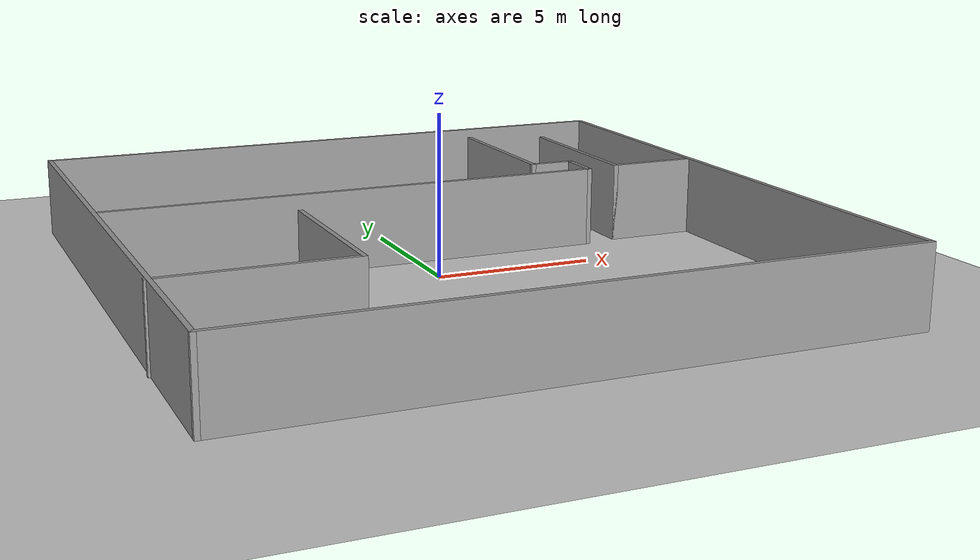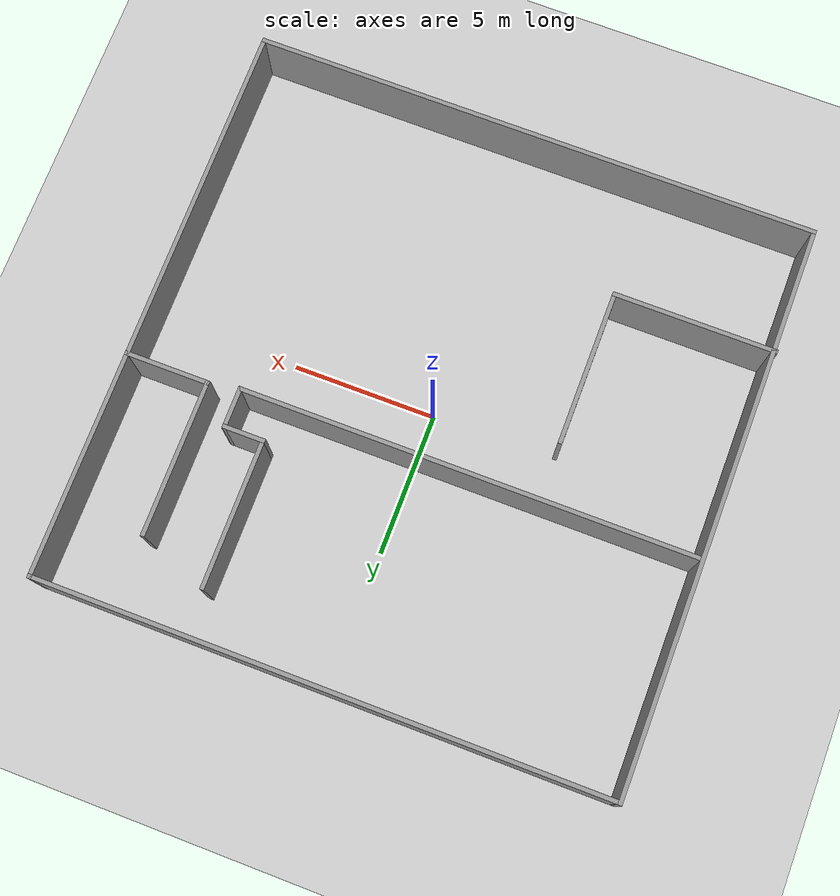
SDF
<?xml version="1.0"?>
<sdf version="1.6">

  <world name="old_maze">

    <gravity>0 0 -9.81</gravity>
    <physics name="default_physics" default="0" type="ode">
      <max_step_size>0.005</max_step_size>
      <real_time_factor>1</real_time_factor>
      <real_time_update_rate>0</real_time_update_rate>
    </physics>

    <scene>
      <ambient>0.4 0.4 0.4 1</ambient>
      <background>0.7 0.7 0.7 1</background>
      <shadows>1</shadows>
    </scene>

    <gui>
      <camera name='gzclient_camera'>
        <pose>1.5 -15.5 20 0 0.9 1.6</pose>
      </camera>
    </gui>

    <!-- Light Source -->
    <include>
      <uri>model://sun</uri>
    </include>

    <!-- A ground plane -->
    <include>
      <uri>model://ground_plane</uri>
      <pose>0 0 0 0 0 0</pose>
    </include>

    <include>
      <uri>model://old_maze</uri>
      <pose> 0 0 0 0 0 0</pose>
    </include>

  </world>
</sdf>

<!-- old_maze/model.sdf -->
<sdf version='1.6'>
  <model name='old_maze'>
    <pose frame=''>-0.078283 0.098984 0 0 -0 0</pose>
    <link name='Wall_0'>
      <collision name='Wall_0_Collision'>
        <geometry>
          <box>
            <size>20 0.15 2.5</size>
          </box>
        </geometry>
        <pose frame=''>0 0 1.25 0 -0 0</pose>
      </collision>
      <visual name='Wall_0_Visual'>
        <pose frame=''>0 0 1.25 0 -0 0</pose>
        <geometry>
          <box>
            <size>20 0.15 2.5</size>
          </box>
        </geometry>
        <material>
          <script>
            <uri>file://media/materials/scripts/gazebo.material</uri>
            <name>Gazebo/Grey</name>
          </script>
          <ambient>1 1 1 1</ambient>
        </material>
      </visual>
      <pose frame=''>0.030536 9.925 0 0 -0 0</pose>
    </link>
    <link name='Wall_1'>
      <collision name='Wall_1_Collision'>
        <geometry>
          <box>
            <size>20 0.15 2.5</size>
          </box>
        </geometry>
        <pose frame=''>0 0 1.25 0 -0 0</pose>
      </collision>
      <visual name='Wall_1_Visual'>
        <pose frame=''>0 0 1.25 0 -0 0</pose>
        <geometry>
          <box>
            <size>20 0.15 2.5</size>
          </box>
        </geometry>
        <material>
          <script>
            <uri>file://media/materials/scripts/gazebo.material</uri>
            <name>Gazebo/Grey</name>
          </script>
          <ambient>1 1 1 1</ambient>
        </material>
      </visual>
      <pose frame=''>9.95554 0 0 0 0 -1.5708</pose>
    </link>
    <link name='Wall_2'>
      <collision name='Wall_2_Collision'>
        <geometry>
          <box>
            <size>20 0.15 2.5</size>
          </box>
        </geometry>
        <pose frame=''>0 0 1.25 0 -0 0</pose>
      </collision>
      <visual name='Wall_2_Visual'>
        <pose frame=''>0 0 1.25 0 -0 0</pose>
        <geometry>
          <box>
            <size>20 0.15 2.5</size>
          </box>
        </geometry>
        <material>
          <script>
            <uri>file://media/materials/scripts/gazebo.material</uri>
            <name>Gazebo/Grey</name>
          </script>
          <ambient>1 1 1 1</ambient>
        </material>
      </visual>
      <pose frame=''>0.030536 -9.925 0 0 -0 3.14159</pose>
    </link>
    <link name='Wall_24'>
      <collision name='Wall_24_Collision'>
        <geometry>
          <box>
            <size>1.5 0.15 2.5</size>
          </box>
        </geometry>
        <pose frame=''>0 0 1.25 0 -0 0</pose>
      </collision>
      <visual name='Wall_24_Visual'>
        <pose frame=''>0 0 1.25 0 -0 0</pose>
        <geometry>
          <box>
            <size>1.5 0.15 2.5</size>
          </box>
        </geometry>
        <material>
          <script>
            <uri>file://media/materials/scripts/gazebo.material</uri>
            <name>Gazebo/Grey</name>
          </script>
          <ambient>1 1 1 1</ambient>
        </material>
      </visual>
      <pose frame=''>5.35089 3.21906 0 0 -0 3.14159</pose>
    </link>
    <link name='Wall_25'>
      <collision name='Wall_25_Collision'>
        <geometry>
          <box>
            <size>5.25 0.15 2.5</size>
          </box>
        </geometry>
        <pose frame=''>0 0 1.25 0 -0 0</pose>
      </collision>
      <visual name='Wall_25_Visual'>
        <pose frame=''>0 0 1.25 0 -0 0</pose>
        <geometry>
          <box>
            <size>5.25 0.15 2.5</size>
          </box>
        </geometry>
        <material>
          <script>
            <uri>file://media/materials/scripts/gazebo.material</uri>
            <name>Gazebo/Grey</name>
          </script>
          <ambient>1 1 1 1</ambient>
        </material>
      </visual>
      <pose frame=''>4.67589 5.76906 0 0 -0 1.5708</pose>
    </link>
    <link name='Wall_27'>
      <collision name='Wall_27_Collision'>
        <geometry>
          <box>
            <size>5.5 0.15 2.5</size>
          </box>
        </geometry>
        <pose frame=''>0 0 1.25 0 -0 0</pose>
      </collision>
      <visual name='Wall_27_Visual'>
        <pose frame=''>0 0 1.25 0 -0 0</pose>
        <geometry>
          <box>
            <size>5.5 0.15 2.5</size>
          </box>
        </geometry>
        <material>
          <script>
            <uri>file://media/materials/scripts/gazebo.material</uri>
            <name>Gazebo/Grey</name>
          </script>
          <ambient>1 1 1 1</ambient>
        </material>
      </visual>
      <pose frame=''>7.10914 4.73454 0 0 0 -1.5708</pose>
    </link>
    <link name='Wall_28'>
      <collision name='Wall_28_Collision'>
        <geometry>
          <box>
            <size>3 0.15 2.5</size>
          </box>
        </geometry>
        <pose frame=''>0 0 1.25 0 -0 0</pose>
      </collision>
      <visual name='Wall_28_Visual'>
        <pose frame=''>0 0 1.25 0 -0 0</pose>
        <geometry>
          <box>
            <size>3 0.15 2.5</size>
          </box>
        </geometry>
        <material>
          <script>
            <uri>file://media/materials/scripts/gazebo.material</uri>
            <name>Gazebo/Grey</name>
          </script>
          <ambient>1 1 1 1</ambient>
        </material>
      </visual>
      <pose frame=''>8.53414 2.05954 0 0 -0 0</pose>
    </link>
    <link name='Wall_3'>
      <collision name='Wall_3_Collision'>
        <geometry>
          <box>
            <size>20 0.15 2.5</size>
          </box>
        </geometry>
        <pose frame=''>0 0 1.25 0 -0 0</pose>
      </collision>
      <visual name='Wall_3_Visual'>
        <pose frame=''>0 0 1.25 0 -0 0</pose>
        <geometry>
          <box>
            <size>20 0.15 2.5</size>
          </box>
        </geometry>
        <material>
          <script>
            <uri>file://media/materials/scripts/gazebo.material</uri>
            <name>Gazebo/Grey</name>
          </script>
          <ambient>1 1 1 1</ambient>
        </material>
      </visual>
      <pose frame=''>-9.89446 0 0 0 -0 1.5708</pose>
    </link>
    <link name='Wall_30'>
      <collision name='Wall_30_Collision'>
        <geometry>
          <box>
            <size>5.5 0.15 2.5</size>
          </box>
        </geometry>
        <pose frame=''>0 0 1.25 0 -0 0</pose>
      </collision>
      <visual name='Wall_30_Visual'>
        <pose frame=''>0 0 1.25 0 -0 0</pose>
        <geometry>
          <box>
            <size>5.5 0.15 2.5</size>
          </box>
        </geometry>
        <material>
          <script>
            <uri>file://media/materials/scripts/gazebo.material</uri>
            <name>Gazebo/Grey</name>
          </script>
          <ambient>1 1 1 1</ambient>
        </material>
      </visual>
      <pose frame=''>-4.35914 -2.82889 0 0 0 -1.5708</pose>
    </link>
    <link name='Wall_31'>
      <collision name='Wall_31_Collision'>
        <geometry>
          <box>
            <size>5.75 0.15 2.5</size>
          </box>
        </geometry>
        <pose frame=''>0 0 1.25 0 -0 0</pose>
      </collision>
      <visual name='Wall_31_Visual'>
        <pose frame=''>0 0 1.25 0 -0 0</pose>
        <geometry>
          <box>
            <size>5.75 0.15 2.5</size>
          </box>
        </geometry>
        <material>
          <script>
            <uri>file://media/materials/scripts/gazebo.material</uri>
            <name>Gazebo/Grey</name>
          </script>
          <ambient>1 1 1 1</ambient>
        </material>
      </visual>
      <pose frame=''>-7.15914 -5.50389 0 0 -0 3.14159</pose>
    </link>
    <link name='Wall_5'>
      <collision name='Wall_5_Collision'>
        <geometry>
          <box>
            <size>16 0.15 2.5</size>
          </box>
        </geometry>
        <pose frame=''>0 0 1.25 0 -0 0</pose>
      </collision>
      <visual name='Wall_5_Visual'>
        <pose frame=''>0 0 1.25 0 -0 0</pose>
        <geometry>
          <box>
            <size>16 0.15 2.5</size>
          </box>
        </geometry>
        <material>
          <script>
            <uri>file://media/materials/scripts/gazebo.material</uri>
            <name>Gazebo/Grey</name>
          </script>
          <ambient>1 1 1 1</ambient>
        </material>
      </visual>
      <pose frame=''>-1.89911 1.86906 0 0 -0 0</pose>
    </link>
    <link name='Wall_6'>
      <collision name='Wall_6_Collision'>
        <geometry>
          <box>
            <size>1.5 0.15 2.5</size>
          </box>
        </geometry>
        <pose frame=''>0 0 1.25 0 -0 0</pose>
      </collision>
      <visual name='Wall_6_Visual'>
        <pose frame=''>0 0 1.25 0 -0 0</pose>
        <geometry>
          <box>
            <size>1.5 0.15 2.5</size>
          </box>
        </geometry>
        <material>
          <script>
            <uri>file://media/materials/scripts/gazebo.material</uri>
            <name>Gazebo/Grey</name>
          </script>
          <ambient>1 1 1 1</ambient>
        </material>
      </visual>
      <pose frame=''>6.02589 2.54406 0 0 -0 1.5708</pose>
    </link>
    <link name='Wall_8'>
      <collision name='Wall_8_Collision'>
        <geometry>
          <box>
            <size>0.15 0.15 2.5</size>
          </box>
        </geometry>
        <pose frame=''>0 0 1.25 0 -0 0</pose>
      </collision>
      <visual name='Wall_8_Visual'>
        <pose frame=''>0 0 1.25 0 -0 0</pose>
        <geometry>
          <box>
            <size>0.15 0.15 2.5</size>
          </box>
        </geometry>
        <material>
          <script>
            <uri>file://media/materials/scripts/gazebo.material</uri>
            <name>Gazebo/Grey</name>
          </script>
          <ambient>1 1 1 1</ambient>
        </material>
      </visual>
      <pose frame=''>6.02589 3.21906 0 0 -0 0</pose>
    </link>
    <static>1</static>
  </model>
</sdf>
